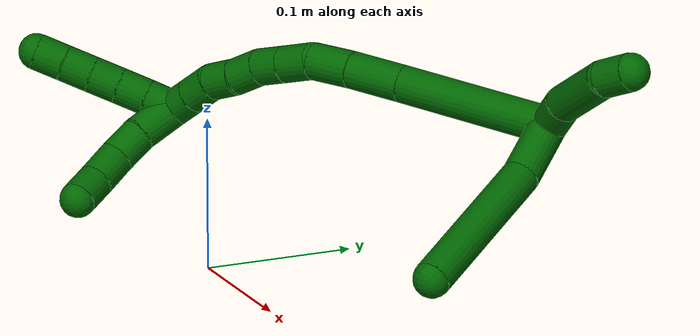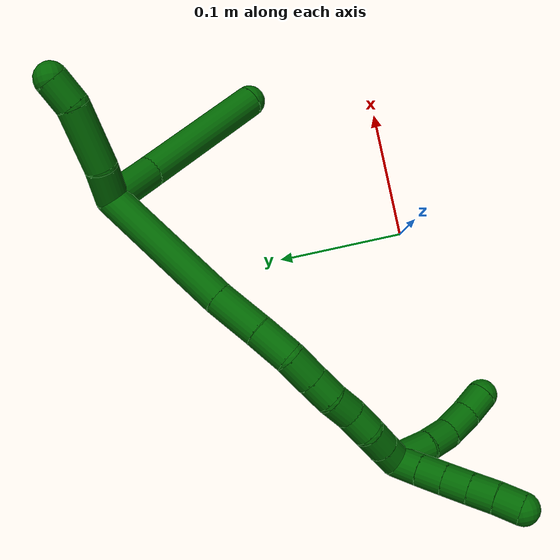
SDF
<sdf version="1.7">
 <world name="default">
  <model name="6">
   <static>0</static>
   <link name="6">
    <collision name="collision-cylinder-e_1_2_8">
     <pose>0.01225 -0.015047 0.008883 1.03751 0.611428 0.356543</pose>
     <geometry><cylinder><radius>0.0125</radius><length>0.04268</length></cylinder></geometry>
     <surface>
      <friction><ode><mu>1.16</mu><mu2>1.16</mu2><slip1>0</slip1><slip2>0</slip2></ode></friction>
      <contact><ode><kp>1e+06</kp><kd>1</kd><max_vel>0</max_vel><min_depth>0.001</min_depth></ode></contact>
     </surface>
    </collision>
    <visual name="visual-cylinder-e_1_2_8">
     <pose>0.01225 -0.015047 0.008883 1.03751 0.611428 0.356543</pose>
     <geometry><cylinder><radius>0.0125</radius><length>0.04268</length></cylinder></geometry>
     <material><ambient>0 0.392157 0.003922 1</ambient></material>
    </visual>
    <collision name="collision-cylinder-e_2_8_6">
     <pose>0.044896 -0.074058 0.040802 1.08814 0.389895 0.237784</pose>
     <geometry><cylinder><radius>0.0125</radius><length>0.10732</length></cylinder></geometry>
     <surface>
      <friction><ode><mu>1.16</mu><mu2>1.16</mu2><slip1>0</slip1><slip2>0</slip2></ode></friction>
      <contact><ode><kp>1e+06</kp><kd>1</kd><max_vel>0</max_vel><min_depth>0.001</min_depth></ode></contact>
     </surface>
    </collision>
    <visual name="visual-cylinder-e_2_8_6">
     <pose>0.044896 -0.074058 0.040802 1.08814 0.389895 0.237784</pose>
     <geometry><cylinder><radius>0.0125</radius><length>0.10732</length></cylinder></geometry>
     <material><ambient>0 0.392157 0.003922 1</ambient></material>
    </visual>
    <collision name="collision-cylinder-e_1_2_9">
     <pose>-0.009767 0.000352 0.010145 -0.034722 -0.766134 0.013993</pose>
     <geometry><cylinder><radius>0.0125</radius><length>0.028174</length></cylinder></geometry>
     <surface>
      <friction><ode><mu>1.16</mu><mu2>1.16</mu2><slip1>0</slip1><slip2>0</slip2></ode></friction>
      <contact><ode><kp>1e+06</kp><kd>1</kd><max_vel>0</max_vel><min_depth>0.001</min_depth></ode></contact>
     </surface>
    </collision>
    <visual name="visual-cylinder-e_1_2_9">
     <pose>-0.009767 0.000352 0.010145 -0.034722 -0.766134 0.013993</pose>
     <geometry><cylinder><radius>0.0125</radius><length>0.028174</length></cylinder></geometry>
     <material><ambient>0 0.392157 0.003922 1</ambient></material>
    </visual>
    <collision name="collision-cylinder-e_2_9_10">
     <pose>-0.032432 0.00412 0.04094 -0.163887 -0.552253 0.046536</pose>
     <geometry><cylinder><radius>0.0125</radius><length>0.04917</length></cylinder></geometry>
     <surface>
      <friction><ode><mu>1.16</mu><mu2>1.16</mu2><slip1>0</slip1><slip2>0</slip2></ode></friction>
      <contact><ode><kp>1e+06</kp><kd>1</kd><max_vel>0</max_vel><min_depth>0.001</min_depth></ode></contact>
     </surface>
    </collision>
    <visual name="visual-cylinder-e_2_9_10">
     <pose>-0.032432 0.00412 0.04094 -0.163887 -0.552253 0.046536</pose>
     <geometry><cylinder><radius>0.0125</radius><length>0.04917</length></cylinder></geometry>
     <material><ambient>0 0.392157 0.003922 1</ambient></material>
    </visual>
    <collision name="collision-cylinder-e_3_10_5">
     <pose>-0.049207 0.012259 0.071127 -0.459939 -0.349378 0.082589</pose>
     <geometry><cylinder><radius>0.0125</radius><length>0.022656</length></cylinder></geometry>
     <surface>
      <friction><ode><mu>1.16</mu><mu2>1.16</mu2><slip1>0</slip1><slip2>0</slip2></ode></friction>
      <contact><ode><kp>1e+06</kp><kd>1</kd><max_vel>0</max_vel><min_depth>0.001</min_depth></ode></contact>
     </surface>
    </collision>
    <visual name="visual-cylinder-e_3_10_5">
     <pose>-0.049207 0.012259 0.071127 -0.459939 -0.349378 0.082589</pose>
     <geometry><cylinder><radius>0.0125</radius><length>0.022656</length></cylinder></geometry>
     <material><ambient>0 0.392157 0.003922 1</ambient></material>
    </visual>
    <collision name="collision-cylinder-e_1_2_11">
     <pose>-0.007366 -0.029747 -0.045012 2.55761 -0.135688 -0.444634</pose>
     <geometry><cylinder><radius>0.0125</radius><length>0.108907</length></cylinder></geometry>
     <surface>
      <friction><ode><mu>1.16</mu><mu2>1.16</mu2><slip1>0</slip1><slip2>0</slip2></ode></friction>
      <contact><ode><kp>1e+06</kp><kd>1</kd><max_vel>0</max_vel><min_depth>0.001</min_depth></ode></contact>
     </surface>
    </collision>
    <visual name="visual-cylinder-e_1_2_11">
     <pose>-0.007366 -0.029747 -0.045012 2.55761 -0.135688 -0.444634</pose>
     <geometry><cylinder><radius>0.0125</radius><length>0.108907</length></cylinder></geometry>
     <material><ambient>0 0.392157 0.003922 1</ambient></material>
    </visual>
    <collision name="collision-cylinder-e_2_11_12">
     <pose>-0.017652 -0.070814 -0.104837 2.4891 -0.155344 -0.4522</pose>
     <geometry><cylinder><radius>0.0125</radius><length>0.037741</length></cylinder></geometry>
     <surface>
      <friction><ode><mu>1.16</mu><mu2>1.16</mu2><slip1>0</slip1><slip2>0</slip2></ode></friction>
      <contact><ode><kp>1e+06</kp><kd>1</kd><max_vel>0</max_vel><min_depth>0.001</min_depth></ode></contact>
     </surface>
    </collision>
    <visual name="visual-cylinder-e_2_11_12">
     <pose>-0.017652 -0.070814 -0.104837 2.4891 -0.155344 -0.4522</pose>
     <geometry><cylinder><radius>0.0125</radius><length>0.037741</length></cylinder></geometry>
     <material><ambient>0 0.392157 0.003922 1</ambient></material>
    </visual>
    <collision name="collision-cylinder-e_3_12_13">
     <pose>-0.022049 -0.090681 -0.131352 2.51072 -0.101595 -0.30911</pose>
     <geometry><cylinder><radius>0.0125</radius><length>0.029132</length></cylinder></geometry>
     <surface>
      <friction><ode><mu>1.16</mu><mu2>1.16</mu2><slip1>0</slip1><slip2>0</slip2></ode></friction>
      <contact><ode><kp>1e+06</kp><kd>1</kd><max_vel>0</max_vel><min_depth>0.001</min_depth></ode></contact>
     </surface>
    </collision>
    <visual name="visual-cylinder-e_3_12_13">
     <pose>-0.022049 -0.090681 -0.131352 2.51072 -0.101595 -0.30911</pose>
     <geometry><cylinder><radius>0.0125</radius><length>0.029132</length></cylinder></geometry>
     <material><ambient>0 0.392157 0.003922 1</ambient></material>
    </visual>
    <collision name="collision-cylinder-e_4_13_14">
     <pose>-0.020896 -0.105275 -0.152713 2.58232 0.226767 0.755053</pose>
     <geometry><cylinder><radius>0.0125</radius><length>0.023392</length></cylinder></geometry>
     <surface>
      <friction><ode><mu>1.16</mu><mu2>1.16</mu2><slip1>0</slip1><slip2>0</slip2></ode></friction>
      <contact><ode><kp>1e+06</kp><kd>1</kd><max_vel>0</max_vel><min_depth>0.001</min_depth></ode></contact>
     </surface>
    </collision>
    <visual name="visual-cylinder-e_4_13_14">
     <pose>-0.020896 -0.105275 -0.152713 2.58232 0.226767 0.755053</pose>
     <geometry><cylinder><radius>0.0125</radius><length>0.023392</length></cylinder></geometry>
     <material><ambient>0 0.392157 0.003922 1</ambient></material>
    </visual>
    <collision name="collision-cylinder-e_5_14_15">
     <pose>-0.01611 -0.116606 -0.170597 2.57041 0.217165 0.710993</pose>
     <geometry><cylinder><radius>0.0125</radius><length>0.020021</length></cylinder></geometry>
     <surface>
      <friction><ode><mu>1.16</mu><mu2>1.16</mu2><slip1>0</slip1><slip2>0</slip2></ode></friction>
      <contact><ode><kp>1e+06</kp><kd>1</kd><max_vel>0</max_vel><min_depth>0.001</min_depth></ode></contact>
     </surface>
    </collision>
    <visual name="visual-cylinder-e_5_14_15">
     <pose>-0.01611 -0.116606 -0.170597 2.57041 0.217165 0.710993</pose>
     <geometry><cylinder><radius>0.0125</radius><length>0.020021</length></cylinder></geometry>
     <material><ambient>0 0.392157 0.003922 1</ambient></material>
    </visual>
    <collision name="collision-cylinder-e_6_15_16">
     <pose>-0.009661 -0.127597 -0.186031 2.47218 0.436721 1.13582</pose>
     <geometry><cylinder><radius>0.0125</radius><length>0.020295</length></cylinder></geometry>
     <surface>
      <friction><ode><mu>1.16</mu><mu2>1.16</mu2><slip1>0</slip1><slip2>0</slip2></ode></friction>
      <contact><ode><kp>1e+06</kp><kd>1</kd><max_vel>0</max_vel><min_depth>0.001</min_depth></ode></contact>
     </surface>
    </collision>
    <visual name="visual-cylinder-e_6_15_16">
     <pose>-0.009661 -0.127597 -0.186031 2.47218 0.436721 1.13582</pose>
     <geometry><cylinder><radius>0.0125</radius><length>0.020295</length></cylinder></geometry>
     <material><ambient>0 0.392157 0.003922 1</ambient></material>
    </visual>
    <collision name="collision-cylinder-e_7_16_17">
     <pose>-0.002366 -0.138468 -0.201513 2.58336 0.298696 0.966919</pose>
     <geometry><cylinder><radius>0.0125</radius><length>0.020407</length></cylinder></geometry>
     <surface>
      <friction><ode><mu>1.16</mu><mu2>1.16</mu2><slip1>0</slip1><slip2>0</slip2></ode></friction>
      <contact><ode><kp>1e+06</kp><kd>1</kd><max_vel>0</max_vel><min_depth>0.001</min_depth></ode></contact>
     </surface>
    </collision>
    <visual name="visual-cylinder-e_7_16_17">
     <pose>-0.002366 -0.138468 -0.201513 2.58336 0.298696 0.966919</pose>
     <geometry><cylinder><radius>0.0125</radius><length>0.020407</length></cylinder></geometry>
     <material><ambient>0 0.392157 0.003922 1</ambient></material>
    </visual>
    <collision name="collision-cylinder-e_8_17_18">
     <pose>0.006411 -0.147851 -0.216806 2.60073 0.614131 1.70477</pose>
     <geometry><cylinder><radius>0.0125</radius><length>0.020043</length></cylinder></geometry>
     <surface>
      <friction><ode><mu>1.16</mu><mu2>1.16</mu2><slip1>0</slip1><slip2>0</slip2></ode></friction>
      <contact><ode><kp>1e+06</kp><kd>1</kd><max_vel>0</max_vel><min_depth>0.001</min_depth></ode></contact>
     </surface>
    </collision>
    <visual name="visual-cylinder-e_8_17_18">
     <pose>0.006411 -0.147851 -0.216806 2.60073 0.614131 1.70477</pose>
     <geometry><cylinder><radius>0.0125</radius><length>0.020043</length></cylinder></geometry>
     <material><ambient>0 0.392157 0.003922 1</ambient></material>
    </visual>
    <collision name="collision-cylinder-e_9_18_1">
     <pose>0.018008 -0.156404 -0.23075 2.58205 0.619237 1.67806</pose>
     <geometry><cylinder><radius>0.0125</radius><length>0.020062</length></cylinder></geometry>
     <surface>
      <friction><ode><mu>1.16</mu><mu2>1.16</mu2><slip1>0</slip1><slip2>0</slip2></ode></friction>
      <contact><ode><kp>1e+06</kp><kd>1</kd><max_vel>0</max_vel><min_depth>0.001</min_depth></ode></contact>
     </surface>
    </collision>
    <visual name="visual-cylinder-e_9_18_1">
     <pose>0.018008 -0.156404 -0.23075 2.58205 0.619237 1.67806</pose>
     <geometry><cylinder><radius>0.0125</radius><length>0.020062</length></cylinder></geometry>
     <material><ambient>0 0.392157 0.003922 1</ambient></material>
    </visual>
    <collision name="collision-cylinder-e_1_1_19">
     <pose>0.030149 -0.174414 -0.236042 1.45212 0.430155 0.383156</pose>
     <geometry><cylinder><radius>0.0125</radius><length>0.030305</length></cylinder></geometry>
     <surface>
      <friction><ode><mu>1.16</mu><mu2>1.16</mu2><slip1>0</slip1><slip2>0</slip2></ode></friction>
      <contact><ode><kp>1e+06</kp><kd>1</kd><max_vel>0</max_vel><min_depth>0.001</min_depth></ode></contact>
     </surface>
    </collision>
    <visual name="visual-cylinder-e_1_1_19">
     <pose>0.030149 -0.174414 -0.236042 1.45212 0.430155 0.383156</pose>
     <geometry><cylinder><radius>0.0125</radius><length>0.030305</length></cylinder></geometry>
     <material><ambient>0 0.392157 0.003922 1</ambient></material>
    </visual>
    <collision name="collision-cylinder-e_2_19_20">
     <pose>0.04253 -0.197614 -0.232243 1.34692 0.555426 0.447323</pose>
     <geometry><cylinder><radius>0.0125</radius><length>0.022993</length></cylinder></geometry>
     <surface>
      <friction><ode><mu>1.16</mu><mu2>1.16</mu2><slip1>0</slip1><slip2>0</slip2></ode></friction>
      <contact><ode><kp>1e+06</kp><kd>1</kd><max_vel>0</max_vel><min_depth>0.001</min_depth></ode></contact>
     </surface>
    </collision>
    <visual name="visual-cylinder-e_2_19_20">
     <pose>0.04253 -0.197614 -0.232243 1.34692 0.555426 0.447323</pose>
     <geometry><cylinder><radius>0.0125</radius><length>0.022993</length></cylinder></geometry>
     <material><ambient>0 0.392157 0.003922 1</ambient></material>
    </visual>
    <collision name="collision-cylinder-e_3_20_21">
     <pose>0.053978 -0.217199 -0.225166 1.11688 0.448478 0.283087</pose>
     <geometry><cylinder><radius>0.0125</radius><length>0.024844</length></cylinder></geometry>
     <surface>
      <friction><ode><mu>1.16</mu><mu2>1.16</mu2><slip1>0</slip1><slip2>0</slip2></ode></friction>
      <contact><ode><kp>1e+06</kp><kd>1</kd><max_vel>0</max_vel><min_depth>0.001</min_depth></ode></contact>
     </surface>
    </collision>
    <visual name="visual-cylinder-e_3_20_21">
     <pose>0.053978 -0.217199 -0.225166 1.11688 0.448478 0.283087</pose>
     <geometry><cylinder><radius>0.0125</radius><length>0.024844</length></cylinder></geometry>
     <material><ambient>0 0.392157 0.003922 1</ambient></material>
    </visual>
    <collision name="collision-cylinder-e_4_21_4">
     <pose>0.062758 -0.235995 -0.214635 0.998907 0.315709 0.173259</pose>
     <geometry><cylinder><radius>0.0125</radius><length>0.021858</length></cylinder></geometry>
     <surface>
      <friction><ode><mu>1.16</mu><mu2>1.16</mu2><slip1>0</slip1><slip2>0</slip2></ode></friction>
      <contact><ode><kp>1e+06</kp><kd>1</kd><max_vel>0</max_vel><min_depth>0.001</min_depth></ode></contact>
     </surface>
    </collision>
    <visual name="visual-cylinder-e_4_21_4">
     <pose>0.062758 -0.235995 -0.214635 0.998907 0.315709 0.173259</pose>
     <geometry><cylinder><radius>0.0125</radius><length>0.021858</length></cylinder></geometry>
     <material><ambient>0 0.392157 0.003922 1</ambient></material>
    </visual>
    <collision name="collision-cylinder-e_1_1_22">
     <pose>0.019732 -0.168331 -0.242729 2.15839 -0.422241 -0.761448</pose>
     <geometry><cylinder><radius>0.0125</radius><length>0.02</length></cylinder></geometry>
     <surface>
      <friction><ode><mu>1.16</mu><mu2>1.16</mu2><slip1>0</slip1><slip2>0</slip2></ode></friction>
      <contact><ode><kp>1e+06</kp><kd>1</kd><max_vel>0</max_vel><min_depth>0.001</min_depth></ode></contact>
     </surface>
    </collision>
    <visual name="visual-cylinder-e_1_1_22">
     <pose>0.019732 -0.168331 -0.242729 2.15839 -0.422241 -0.761448</pose>
     <geometry><cylinder><radius>0.0125</radius><length>0.02</length></cylinder></geometry>
     <material><ambient>0 0.392157 0.003922 1</ambient></material>
    </visual>
    <collision name="collision-cylinder-e_2_22_23">
     <pose>0.011646 -0.183659 -0.252711 2.13775 -0.410208 -0.724658</pose>
     <geometry><cylinder><radius>0.0125</radius><length>0.02</length></cylinder></geometry>
     <surface>
      <friction><ode><mu>1.16</mu><mu2>1.16</mu2><slip1>0</slip1><slip2>0</slip2></ode></friction>
      <contact><ode><kp>1e+06</kp><kd>1</kd><max_vel>0</max_vel><min_depth>0.001</min_depth></ode></contact>
     </surface>
    </collision>
    <visual name="visual-cylinder-e_2_22_23">
     <pose>0.011646 -0.183659 -0.252711 2.13775 -0.410208 -0.724658</pose>
     <geometry><cylinder><radius>0.0125</radius><length>0.02</length></cylinder></geometry>
     <material><ambient>0 0.392157 0.003922 1</ambient></material>
    </visual>
    <collision name="collision-cylinder-e_3_23_24">
     <pose>0.003693 -0.199159 -0.262533 2.13343 -0.407704 -0.71712</pose>
     <geometry><cylinder><radius>0.0125</radius><length>0.02</length></cylinder></geometry>
     <surface>
      <friction><ode><mu>1.16</mu><mu2>1.16</mu2><slip1>0</slip1><slip2>0</slip2></ode></friction>
      <contact><ode><kp>1e+06</kp><kd>1</kd><max_vel>0</max_vel><min_depth>0.001</min_depth></ode></contact>
     </surface>
    </collision>
    <visual name="visual-cylinder-e_3_23_24">
     <pose>0.003693 -0.199159 -0.262533 2.13343 -0.407704 -0.71712</pose>
     <geometry><cylinder><radius>0.0125</radius><length>0.02</length></cylinder></geometry>
     <material><ambient>0 0.392157 0.003922 1</ambient></material>
    </visual>
    <collision name="collision-cylinder-e_4_24_25">
     <pose>-0.004291 -0.214731 -0.272216 2.12073 -0.413561 -0.716936</pose>
     <geometry><cylinder><radius>0.0125</radius><length>0.02</length></cylinder></geometry>
     <surface>
      <friction><ode><mu>1.16</mu><mu2>1.16</mu2><slip1>0</slip1><slip2>0</slip2></ode></friction>
      <contact><ode><kp>1e+06</kp><kd>1</kd><max_vel>0</max_vel><min_depth>0.001</min_depth></ode></contact>
     </surface>
    </collision>
    <visual name="visual-cylinder-e_4_24_25">
     <pose>-0.004291 -0.214731 -0.272216 2.12073 -0.413561 -0.716936</pose>
     <geometry><cylinder><radius>0.0125</radius><length>0.02</length></cylinder></geometry>
     <material><ambient>0 0.392157 0.003922 1</ambient></material>
    </visual>
    <collision name="collision-cylinder-e_5_25_3">
     <pose>-0.012138 -0.230087 -0.282326 2.18506 -0.392955 -0.733191</pose>
     <geometry><cylinder><radius>0.0125</radius><length>0.02</length></cylinder></geometry>
     <surface>
      <friction><ode><mu>1.16</mu><mu2>1.16</mu2><slip1>0</slip1><slip2>0</slip2></ode></friction>
      <contact><ode><kp>1e+06</kp><kd>1</kd><max_vel>0</max_vel><min_depth>0.001</min_depth></ode></contact>
     </surface>
    </collision>
    <visual name="visual-cylinder-e_5_25_3">
     <pose>-0.012138 -0.230087 -0.282326 2.18506 -0.392955 -0.733191</pose>
     <geometry><cylinder><radius>0.0125</radius><length>0.02</length></cylinder></geometry>
     <material><ambient>0 0.392157 0.003922 1</ambient></material>
    </visual>
    <collision name="collision-sphere-3">
     <pose>-0.015968 -0.237637 -0.28765 0 -0 0</pose>
     <geometry><sphere><radius>0.0125</radius></sphere></geometry>
     <surface>
      <friction><ode><mu>1.16</mu><mu2>1.16</mu2><slip1>0</slip1><slip2>0</slip2></ode></friction>
      <contact><ode><kp>1e+06</kp><kd>1</kd><max_vel>0</max_vel><min_depth>0.001</min_depth></ode></contact>
     </surface>
    </collision>
    <visual name="visual-sphere-3">
     <pose>-0.015968 -0.237637 -0.28765 0 -0 0</pose>
     <geometry><sphere><radius>0.0125</radius></sphere></geometry>
     <material><ambient>0 0.392157 0.003922 1</ambient></material>
    </visual>
    <collision name="collision-sphere-25">
     <pose>-0.008309 -0.222538 -0.277002 0 -0 0</pose>
     <geometry><sphere><radius>0.0125</radius></sphere></geometry>
     <surface>
      <friction><ode><mu>1.16</mu><mu2>1.16</mu2><slip1>0</slip1><slip2>0</slip2></ode></friction>
      <contact><ode><kp>1e+06</kp><kd>1</kd><max_vel>0</max_vel><min_depth>0.001</min_depth></ode></contact>
     </surface>
    </collision>
    <visual name="visual-sphere-25">
     <pose>-0.008309 -0.222538 -0.277002 0 -0 0</pose>
     <geometry><sphere><radius>0.0125</radius></sphere></geometry>
     <material><ambient>0 0.392157 0.003922 1</ambient></material>
    </visual>
    <collision name="collision-sphere-24">
     <pose>-0.000272 -0.206925 -0.26743 0 -0 0</pose>
     <geometry><sphere><radius>0.0125</radius></sphere></geometry>
     <surface>
      <friction><ode><mu>1.16</mu><mu2>1.16</mu2><slip1>0</slip1><slip2>0</slip2></ode></friction>
      <contact><ode><kp>1e+06</kp><kd>1</kd><max_vel>0</max_vel><min_depth>0.001</min_depth></ode></contact>
     </surface>
    </collision>
    <visual name="visual-sphere-24">
     <pose>-0.000272 -0.206925 -0.26743 0 -0 0</pose>
     <geometry><sphere><radius>0.0125</radius></sphere></geometry>
     <material><ambient>0 0.392157 0.003922 1</ambient></material>
    </visual>
    <collision name="collision-sphere-23">
     <pose>0.007658 -0.191394 -0.257636 0 -0 0</pose>
     <geometry><sphere><radius>0.0125</radius></sphere></geometry>
     <surface>
      <friction><ode><mu>1.16</mu><mu2>1.16</mu2><slip1>0</slip1><slip2>0</slip2></ode></friction>
      <contact><ode><kp>1e+06</kp><kd>1</kd><max_vel>0</max_vel><min_depth>0.001</min_depth></ode></contact>
     </surface>
    </collision>
    <visual name="visual-sphere-23">
     <pose>0.007658 -0.191394 -0.257636 0 -0 0</pose>
     <geometry><sphere><radius>0.0125</radius></sphere></geometry>
     <material><ambient>0 0.392157 0.003922 1</ambient></material>
    </visual>
    <collision name="collision-sphere-22">
     <pose>0.015634 -0.175923 -0.247786 0 -0 0</pose>
     <geometry><sphere><radius>0.0125</radius></sphere></geometry>
     <surface>
      <friction><ode><mu>1.16</mu><mu2>1.16</mu2><slip1>0</slip1><slip2>0</slip2></ode></friction>
      <contact><ode><kp>1e+06</kp><kd>1</kd><max_vel>0</max_vel><min_depth>0.001</min_depth></ode></contact>
     </surface>
    </collision>
    <visual name="visual-sphere-22">
     <pose>0.015634 -0.175923 -0.247786 0 -0 0</pose>
     <geometry><sphere><radius>0.0125</radius></sphere></geometry>
     <material><ambient>0 0.392157 0.003922 1</ambient></material>
    </visual>
    <collision name="collision-sphere-4">
     <pose>0.066151 -0.244731 -0.209013 0 -0 0</pose>
     <geometry><sphere><radius>0.0125</radius></sphere></geometry>
     <surface>
      <friction><ode><mu>1.16</mu><mu2>1.16</mu2><slip1>0</slip1><slip2>0</slip2></ode></friction>
      <contact><ode><kp>1e+06</kp><kd>1</kd><max_vel>0</max_vel><min_depth>0.001</min_depth></ode></contact>
     </surface>
    </collision>
    <visual name="visual-sphere-4">
     <pose>0.066151 -0.244731 -0.209013 0 -0 0</pose>
     <geometry><sphere><radius>0.0125</radius></sphere></geometry>
     <material><ambient>0 0.392157 0.003922 1</ambient></material>
    </visual>
    <collision name="collision-sphere-21">
     <pose>0.059364 -0.227259 -0.220258 0 -0 0</pose>
     <geometry><sphere><radius>0.0125</radius></sphere></geometry>
     <surface>
      <friction><ode><mu>1.16</mu><mu2>1.16</mu2><slip1>0</slip1><slip2>0</slip2></ode></friction>
      <contact><ode><kp>1e+06</kp><kd>1</kd><max_vel>0</max_vel><min_depth>0.001</min_depth></ode></contact>
     </surface>
    </collision>
    <visual name="visual-sphere-21">
     <pose>0.059364 -0.227259 -0.220258 0 -0 0</pose>
     <geometry><sphere><radius>0.0125</radius></sphere></geometry>
     <material><ambient>0 0.392157 0.003922 1</ambient></material>
    </visual>
    <collision name="collision-sphere-20">
     <pose>0.048592 -0.207139 -0.230074 0 -0 0</pose>
     <geometry><sphere><radius>0.0125</radius></sphere></geometry>
     <surface>
      <friction><ode><mu>1.16</mu><mu2>1.16</mu2><slip1>0</slip1><slip2>0</slip2></ode></friction>
      <contact><ode><kp>1e+06</kp><kd>1</kd><max_vel>0</max_vel><min_depth>0.001</min_depth></ode></contact>
     </surface>
    </collision>
    <visual name="visual-sphere-20">
     <pose>0.048592 -0.207139 -0.230074 0 -0 0</pose>
     <geometry><sphere><radius>0.0125</radius></sphere></geometry>
     <material><ambient>0 0.392157 0.003922 1</ambient></material>
    </visual>
    <collision name="collision-sphere-5">
     <pose>-0.053085 0.016984 0.080665 0 -0 0</pose>
     <geometry><sphere><radius>0.0125</radius></sphere></geometry>
     <surface>
      <friction><ode><mu>1.16</mu><mu2>1.16</mu2><slip1>0</slip1><slip2>0</slip2></ode></friction>
      <contact><ode><kp>1e+06</kp><kd>1</kd><max_vel>0</max_vel><min_depth>0.001</min_depth></ode></contact>
     </surface>
    </collision>
    <visual name="visual-sphere-5">
     <pose>-0.053085 0.016984 0.080665 0 -0 0</pose>
     <geometry><sphere><radius>0.0125</radius></sphere></geometry>
     <material><ambient>0 0.392157 0.003922 1</ambient></material>
    </visual>
    <collision name="collision-sphere-10">
     <pose>-0.04533 0.007535 0.06159 0 -0 0</pose>
     <geometry><sphere><radius>0.0125</radius></sphere></geometry>
     <surface>
      <friction><ode><mu>1.16</mu><mu2>1.16</mu2><slip1>0</slip1><slip2>0</slip2></ode></friction>
      <contact><ode><kp>1e+06</kp><kd>1</kd><max_vel>0</max_vel><min_depth>0.001</min_depth></ode></contact>
     </surface>
    </collision>
    <visual name="visual-sphere-10">
     <pose>-0.04533 0.007535 0.06159 0 -0 0</pose>
     <geometry><sphere><radius>0.0125</radius></sphere></geometry>
     <material><ambient>0 0.392157 0.003922 1</ambient></material>
    </visual>
    <collision name="collision-sphere-6">
     <pose>0.065291 -0.118021 0.063839 0 -0 0</pose>
     <geometry><sphere><radius>0.0125</radius></sphere></geometry>
     <surface>
      <friction><ode><mu>1.16</mu><mu2>1.16</mu2><slip1>0</slip1><slip2>0</slip2></ode></friction>
      <contact><ode><kp>1e+06</kp><kd>1</kd><max_vel>0</max_vel><min_depth>0.001</min_depth></ode></contact>
     </surface>
    </collision>
    <visual name="visual-sphere-6">
     <pose>0.065291 -0.118021 0.063839 0 -0 0</pose>
     <geometry><sphere><radius>0.0125</radius></sphere></geometry>
     <material><ambient>0 0.392157 0.003922 1</ambient></material>
    </visual>
    <collision name="collision-sphere-9">
     <pose>-0.019535 0.000705 0.02029 0 -0 0</pose>
     <geometry><sphere><radius>0.0125</radius></sphere></geometry>
     <surface>
      <friction><ode><mu>1.16</mu><mu2>1.16</mu2><slip1>0</slip1><slip2>0</slip2></ode></friction>
      <contact><ode><kp>1e+06</kp><kd>1</kd><max_vel>0</max_vel><min_depth>0.001</min_depth></ode></contact>
     </surface>
    </collision>
    <visual name="visual-sphere-9">
     <pose>-0.019535 0.000705 0.02029 0 -0 0</pose>
     <geometry><sphere><radius>0.0125</radius></sphere></geometry>
     <material><ambient>0 0.392157 0.003922 1</ambient></material>
    </visual>
    <collision name="collision-sphere-2">
     <geometry><sphere><radius>0.0125</radius></sphere></geometry>
     <surface>
      <friction><ode><mu>1.16</mu><mu2>1.16</mu2><slip1>0</slip1><slip2>0</slip2></ode></friction>
      <contact><ode><kp>1e+06</kp><kd>1</kd><max_vel>0</max_vel><min_depth>0.001</min_depth></ode></contact>
     </surface>
    </collision>
    <visual name="visual-sphere-2">
     <geometry><sphere><radius>0.0125</radius></sphere></geometry>
     <material><ambient>0 0.392157 0.003922 1</ambient></material>
    </visual>
    <collision name="collision-sphere-19">
     <pose>0.036468 -0.18809 -0.234412 0 -0 0</pose>
     <geometry><sphere><radius>0.0125</radius></sphere></geometry>
     <surface>
      <friction><ode><mu>1.16</mu><mu2>1.16</mu2><slip1>0</slip1><slip2>0</slip2></ode></friction>
      <contact><ode><kp>1e+06</kp><kd>1</kd><max_vel>0</max_vel><min_depth>0.001</min_depth></ode></contact>
     </surface>
    </collision>
    <visual name="visual-sphere-19">
     <pose>0.036468 -0.18809 -0.234412 0 -0 0</pose>
     <geometry><sphere><radius>0.0125</radius></sphere></geometry>
     <material><ambient>0 0.392157 0.003922 1</ambient></material>
    </visual>
    <collision name="collision-sphere-8">
     <pose>0.0245 -0.030095 0.017766 0 -0 0</pose>
     <geometry><sphere><radius>0.0125</radius></sphere></geometry>
     <surface>
      <friction><ode><mu>1.16</mu><mu2>1.16</mu2><slip1>0</slip1><slip2>0</slip2></ode></friction>
      <contact><ode><kp>1e+06</kp><kd>1</kd><max_vel>0</max_vel><min_depth>0.001</min_depth></ode></contact>
     </surface>
    </collision>
    <visual name="visual-sphere-8">
     <pose>0.0245 -0.030095 0.017766 0 -0 0</pose>
     <geometry><sphere><radius>0.0125</radius></sphere></geometry>
     <material><ambient>0 0.392157 0.003922 1</ambient></material>
    </visual>
    <collision name="collision-sphere-11">
     <pose>-0.014732 -0.059494 -0.090023 0 -0 0</pose>
     <geometry><sphere><radius>0.0125</radius></sphere></geometry>
     <surface>
      <friction><ode><mu>1.16</mu><mu2>1.16</mu2><slip1>0</slip1><slip2>0</slip2></ode></friction>
      <contact><ode><kp>1e+06</kp><kd>1</kd><max_vel>0</max_vel><min_depth>0.001</min_depth></ode></contact>
     </surface>
    </collision>
    <visual name="visual-sphere-11">
     <pose>-0.014732 -0.059494 -0.090023 0 -0 0</pose>
     <geometry><sphere><radius>0.0125</radius></sphere></geometry>
     <material><ambient>0 0.392157 0.003922 1</ambient></material>
    </visual>
    <collision name="collision-sphere-12">
     <pose>-0.020571 -0.082134 -0.11965 0 -0 0</pose>
     <geometry><sphere><radius>0.0125</radius></sphere></geometry>
     <surface>
      <friction><ode><mu>1.16</mu><mu2>1.16</mu2><slip1>0</slip1><slip2>0</slip2></ode></friction>
      <contact><ode><kp>1e+06</kp><kd>1</kd><max_vel>0</max_vel><min_depth>0.001</min_depth></ode></contact>
     </surface>
    </collision>
    <visual name="visual-sphere-12">
     <pose>-0.020571 -0.082134 -0.11965 0 -0 0</pose>
     <geometry><sphere><radius>0.0125</radius></sphere></geometry>
     <material><ambient>0 0.392157 0.003922 1</ambient></material>
    </visual>
    <collision name="collision-sphere-13">
     <pose>-0.023526 -0.099229 -0.143053 0 -0 0</pose>
     <geometry><sphere><radius>0.0125</radius></sphere></geometry>
     <surface>
      <friction><ode><mu>1.16</mu><mu2>1.16</mu2><slip1>0</slip1><slip2>0</slip2></ode></friction>
      <contact><ode><kp>1e+06</kp><kd>1</kd><max_vel>0</max_vel><min_depth>0.001</min_depth></ode></contact>
     </surface>
    </collision>
    <visual name="visual-sphere-13">
     <pose>-0.023526 -0.099229 -0.143053 0 -0 0</pose>
     <geometry><sphere><radius>0.0125</radius></sphere></geometry>
     <material><ambient>0 0.392157 0.003922 1</ambient></material>
    </visual>
    <collision name="collision-sphere-14">
     <pose>-0.018267 -0.111322 -0.162373 0 -0 0</pose>
     <geometry><sphere><radius>0.0125</radius></sphere></geometry>
     <surface>
      <friction><ode><mu>1.16</mu><mu2>1.16</mu2><slip1>0</slip1><slip2>0</slip2></ode></friction>
      <contact><ode><kp>1e+06</kp><kd>1</kd><max_vel>0</max_vel><min_depth>0.001</min_depth></ode></contact>
     </surface>
    </collision>
    <visual name="visual-sphere-14">
     <pose>-0.018267 -0.111322 -0.162373 0 -0 0</pose>
     <geometry><sphere><radius>0.0125</radius></sphere></geometry>
     <material><ambient>0 0.392157 0.003922 1</ambient></material>
    </visual>
    <collision name="collision-sphere-15">
     <pose>-0.013953 -0.121891 -0.17882 0 -0 0</pose>
     <geometry><sphere><radius>0.0125</radius></sphere></geometry>
     <surface>
      <friction><ode><mu>1.16</mu><mu2>1.16</mu2><slip1>0</slip1><slip2>0</slip2></ode></friction>
      <contact><ode><kp>1e+06</kp><kd>1</kd><max_vel>0</max_vel><min_depth>0.001</min_depth></ode></contact>
     </surface>
    </collision>
    <visual name="visual-sphere-15">
     <pose>-0.013953 -0.121891 -0.17882 0 -0 0</pose>
     <geometry><sphere><radius>0.0125</radius></sphere></geometry>
     <material><ambient>0 0.392157 0.003922 1</ambient></material>
    </visual>
    <collision name="collision-sphere-16">
     <pose>-0.005369 -0.133303 -0.193242 0 -0 0</pose>
     <geometry><sphere><radius>0.0125</radius></sphere></geometry>
     <surface>
      <friction><ode><mu>1.16</mu><mu2>1.16</mu2><slip1>0</slip1><slip2>0</slip2></ode></friction>
      <contact><ode><kp>1e+06</kp><kd>1</kd><max_vel>0</max_vel><min_depth>0.001</min_depth></ode></contact>
     </surface>
    </collision>
    <visual name="visual-sphere-16">
     <pose>-0.005369 -0.133303 -0.193242 0 -0 0</pose>
     <geometry><sphere><radius>0.0125</radius></sphere></geometry>
     <material><ambient>0 0.392157 0.003922 1</ambient></material>
    </visual>
    <collision name="collision-sphere-17">
     <pose>0.000637 -0.143634 -0.209785 0 -0 0</pose>
     <geometry><sphere><radius>0.0125</radius></sphere></geometry>
     <surface>
      <friction><ode><mu>1.16</mu><mu2>1.16</mu2><slip1>0</slip1><slip2>0</slip2></ode></friction>
      <contact><ode><kp>1e+06</kp><kd>1</kd><max_vel>0</max_vel><min_depth>0.001</min_depth></ode></contact>
     </surface>
    </collision>
    <visual name="visual-sphere-17">
     <pose>0.000637 -0.143634 -0.209785 0 -0 0</pose>
     <geometry><sphere><radius>0.0125</radius></sphere></geometry>
     <material><ambient>0 0.392157 0.003922 1</ambient></material>
    </visual>
    <collision name="collision-sphere-18">
     <pose>0.012186 -0.152068 -0.223827 0 -0 0</pose>
     <geometry><sphere><radius>0.0125</radius></sphere></geometry>
     <surface>
      <friction><ode><mu>1.16</mu><mu2>1.16</mu2><slip1>0</slip1><slip2>0</slip2></ode></friction>
      <contact><ode><kp>1e+06</kp><kd>1</kd><max_vel>0</max_vel><min_depth>0.001</min_depth></ode></contact>
     </surface>
    </collision>
    <visual name="visual-sphere-18">
     <pose>0.012186 -0.152068 -0.223827 0 -0 0</pose>
     <geometry><sphere><radius>0.0125</radius></sphere></geometry>
     <material><ambient>0 0.392157 0.003922 1</ambient></material>
    </visual>
    <collision name="collision-sphere-1">
     <pose>0.02383 -0.160739 -0.237673 0 -0 0</pose>
     <geometry><sphere><radius>0.0125</radius></sphere></geometry>
     <surface>
      <friction><ode><mu>1.16</mu><mu2>1.16</mu2><slip1>0</slip1><slip2>0</slip2></ode></friction>
      <contact><ode><kp>1e+06</kp><kd>1</kd><max_vel>0</max_vel><min_depth>0.001</min_depth></ode></contact>
     </surface>
    </collision>
    <visual name="visual-sphere-1">
     <pose>0.02383 -0.160739 -0.237673 0 -0 0</pose>
     <geometry><sphere><radius>0.0125</radius></sphere></geometry>
     <material><ambient>0 0.392157 0.003922 1</ambient></material>
    </visual>
    <inertial>
     <pose>0.006209 -0.097694 -0.102528 0 -0 0</pose>
     <mass>0.75</mass>
     <inertia><ixx>0.000225</ixx><ixy>0</ixy><ixz>0</ixz><iyy>-6e-05</iyy><iyz>0</iyz><izz>0.000142</izz></inertia>
    </inertial>
   </link>
   <pose>0.063407 0.211983 0.086987 1.54606 1.53451 1.56526</pose>
  </model>
 </world>
</sdf>
